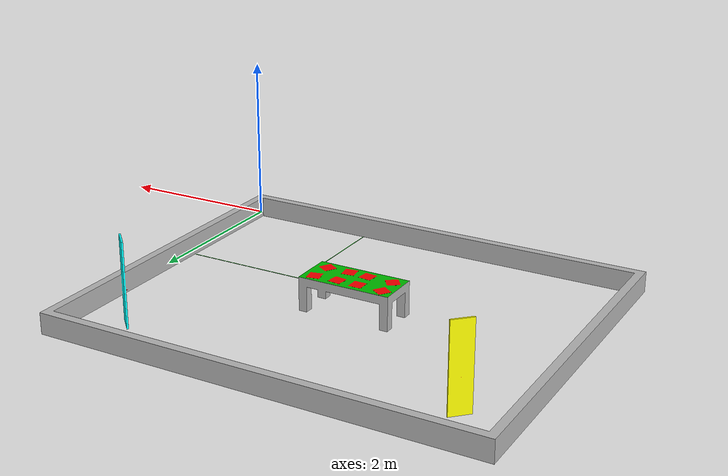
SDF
<?xml version="1.0"?>
<sdf version="1.5">
  <model name="challenge 3">
    <static>true</static>
    <link name="body">
      <collision name="collision">
        <geometry>
          <mesh>
            <uri>model://challenge_3/meshes/challenge_3.dae</uri>
          </mesh>
        </geometry>
      </collision>
      <visual name="visual">
        <geometry>
          <mesh>
            <uri>model://challenge_3/meshes/challenge_3.dae</uri>
          </mesh>
        </geometry>
      </visual>
    </link>
  </model>
</sdf>
